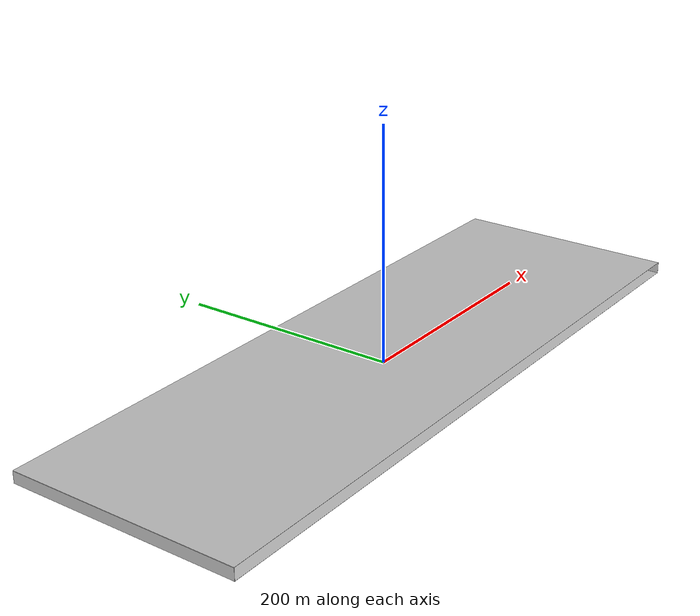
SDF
<?xml version='1.0'?>
<sdf version='1.6'>
  <model name='Building_600x200'>
    <link name='floor'>
      <inertial>
        <mass>20</mass>
        <inertia>
          <ixx>833333366666</ixx>
          <ixy>0</ixy>
          <ixz>0</ixz>
          <iyy>533333366666</iyy>
          <iyz>0</iyz>
          <izz>1366666666666</izz>
        </inertia>
        <pose frame=''>0 0 0 0 -0 0</pose>
      </inertial>
      <pose frame=''>0 0 -0.1 0 -0 0</pose>
      <gravity>1</gravity>
      <self_collide>0</self_collide>
      <kinematic>0</kinematic>
      <enable_wind>0</enable_wind>
      <visual name='visual'>
        <pose frame=''>0 0 0 0 -0 0</pose>
        <geometry>
          <box>
            <size>600 200 0.2</size>
          </box>
        </geometry>
        <material>
          <lighting>false</lighting>
          <script>
            <uri>model://Building_600x200/materials/scripts/</uri>
            <uri>model://Building_600x200/materials/textures/</uri>
            <name>stocked/concrete</name>
          </script>
        </material>
        <transparency>0</transparency>
        <cast_shadows>0</cast_shadows>
      </visual>
      <collision name='collision'>
        <laser_retro>0</laser_retro>
        <max_contacts>10</max_contacts>
        <pose frame=''>0 0 0 0 -0 0</pose>
        <geometry>
          <box>
            <size>600 200 0.2</size>
          </box>
        </geometry>
        <surface>
          <friction>
            <ode>
              <mu>1</mu>
              <mu2>1</mu2>
              <fdir1>0 0 0</fdir1>
              <slip1>0</slip1>
              <slip2>0</slip2>
            </ode>
            <torsional>
              <coefficient>1</coefficient>
              <patch_radius>0</patch_radius>
              <surface_radius>0</surface_radius>
              <use_patch_radius>1</use_patch_radius>
              <ode>
                <slip>0</slip>
              </ode>
            </torsional>
          </friction>
          <bounce>
            <restitution_coefficient>0</restitution_coefficient>
            <threshold>1e+06</threshold>
          </bounce>
          <contact>
            <collide_without_contact>0</collide_without_contact>
            <collide_without_contact_bitmask>1</collide_without_contact_bitmask>
            <collide_bitmask>1</collide_bitmask>
            <ode>
              <soft_cfm>0</soft_cfm>
              <soft_erp>0.2</soft_erp>
              <kp>1e+13</kp>
              <kd>1</kd>
              <max_vel>0.01</max_vel>
              <min_depth>0</min_depth>
            </ode>
            <bullet>
              <split_impulse>1</split_impulse>
              <split_impulse_penetration_threshold>-0.01</split_impulse_penetration_threshold>
              <soft_cfm>0</soft_cfm>
              <soft_erp>0.2</soft_erp>
              <kp>1e+13</kp>
              <kd>1</kd>
            </bullet>
          </contact>
        </surface>
      </collision>
    </link>

    <link name='ceiling'>
      <inertial>
        <mass>20</mass>
        <inertia>
          <ixx>833333366666</ixx>
          <ixy>0</ixy>
          <ixz>0</ixz>
          <iyy>533333366666</iyy>
          <iyz>0</iyz>
          <izz>1366666666666</izz>
        </inertia>
        <pose frame=''>0 0 0 0 -0 0</pose>
      </inertial>
      <pose frame=''>0 0 10.1 0 -0 0</pose>
      <gravity>1</gravity>
      <self_collide>0</self_collide>
      <kinematic>0</kinematic>
      <enable_wind>0</enable_wind>
      <visual name='visual'>
        <pose frame=''>0 0 0 0 -0 0</pose>
        <geometry>
          <box>
            <size>600 200 0.2</size>
          </box>
        </geometry>
        <material>
          <lighting>false</lighting>
          <script>
            <uri>model://Building_600x200/materials/scripts/</uri>
            <uri>model://Building_600x200/materials/textures/</uri>
            <name>stocked/aluminium_corrugated</name>
          </script>
        </material>
        <transparency>0</transparency>
        <cast_shadows>0</cast_shadows>
      </visual>
      <collision name='collision'>
        <laser_retro>0</laser_retro>
        <max_contacts>10</max_contacts>
        <pose frame=''>0 0 0 0 -0 0</pose>
        <geometry>
          <box>
            <size>600 200 0.2</size>
          </box>
        </geometry>
        <surface>
          <friction>
            <ode>
              <mu>1</mu>
              <mu2>1</mu2>
              <fdir1>0 0 0</fdir1>
              <slip1>0</slip1>
              <slip2>0</slip2>
            </ode>
            <torsional>
              <coefficient>1</coefficient>
              <patch_radius>0</patch_radius>
              <surface_radius>0</surface_radius>
              <use_patch_radius>1</use_patch_radius>
              <ode>
                <slip>0</slip>
              </ode>
            </torsional>
          </friction>
          <bounce>
            <restitution_coefficient>0</restitution_coefficient>
            <threshold>1e+06</threshold>
          </bounce>
          <contact>
            <collide_without_contact>0</collide_without_contact>
            <collide_without_contact_bitmask>1</collide_without_contact_bitmask>
            <collide_bitmask>1</collide_bitmask>
            <ode>
              <soft_cfm>0</soft_cfm>
              <soft_erp>0.2</soft_erp>
              <kp>1e+13</kp>
              <kd>1</kd>
              <max_vel>0.01</max_vel>
              <min_depth>0</min_depth>
            </ode>
            <bullet>
              <split_impulse>1</split_impulse>
              <split_impulse_penetration_threshold>-0.01</split_impulse_penetration_threshold>
              <soft_cfm>0</soft_cfm>
              <soft_erp>0.2</soft_erp>
              <kp>1e+13</kp>
              <kd>1</kd>
            </bullet>
          </contact>
        </surface>
      </collision>
    </link>

    <link name='wall_1'>
      <inertial>
        <mass>20</mass>
        <inertia>
          <ixx>833333366666</ixx>
          <ixy>0</ixy>
          <ixz>0</ixz>
          <iyy>533333366666</iyy>
          <iyz>0</iyz>
          <izz>1366666666666</izz>
        </inertia>
        <pose frame=''>0 0 0 0 -0 0</pose>
      </inertial>
      <pose frame=''>300.1 0 5 0 -0 0</pose>
      <gravity>1</gravity>
      <self_collide>0</self_collide>
      <kinematic>0</kinematic>
      <enable_wind>0</enable_wind>
      <visual name='visual'>
        <pose frame=''>0 0 0 0 -0 0</pose>
        <geometry>
          <box>
            <size>0.2 200 10</size>
          </box>
        </geometry>
        <material>
          <lighting>true</lighting>
          <script>
            <uri>model://Building_600x200/materials/scripts/</uri>
            <uri>model://Building_600x200/materials/textures/</uri>
            <name>stocked/concrete</name>
          </script>
        </material>
        <transparency>0</transparency>
        <cast_shadows>0</cast_shadows>
      </visual>
      <collision name='collision'>
        <laser_retro>0</laser_retro>
        <max_contacts>10</max_contacts>
        <pose frame=''>0 0 0 0 -0 0</pose>
        <geometry>
          <box>
            <size>0.2 200 10</size>
          </box>
        </geometry>
        <surface>
          <friction>
            <ode>
              <mu>1</mu>
              <mu2>1</mu2>
              <fdir1>0 0 0</fdir1>
              <slip1>0</slip1>
              <slip2>0</slip2>
            </ode>
            <torsional>
              <coefficient>1</coefficient>
              <patch_radius>0</patch_radius>
              <surface_radius>0</surface_radius>
              <use_patch_radius>1</use_patch_radius>
              <ode>
                <slip>0</slip>
              </ode>
            </torsional>
          </friction>
          <bounce>
            <restitution_coefficient>0</restitution_coefficient>
            <threshold>1e+06</threshold>
          </bounce>
          <contact>
            <collide_without_contact>0</collide_without_contact>
            <collide_without_contact_bitmask>1</collide_without_contact_bitmask>
            <collide_bitmask>1</collide_bitmask>
            <ode>
              <soft_cfm>0</soft_cfm>
              <soft_erp>0.2</soft_erp>
              <kp>1e+13</kp>
              <kd>1</kd>
              <max_vel>0.01</max_vel>
              <min_depth>0</min_depth>
            </ode>
            <bullet>
              <split_impulse>1</split_impulse>
              <split_impulse_penetration_threshold>-0.01</split_impulse_penetration_threshold>
              <soft_cfm>0</soft_cfm>
              <soft_erp>0.2</soft_erp>
              <kp>1e+13</kp>
              <kd>1</kd>
            </bullet>
          </contact>
        </surface>
      </collision>
    </link>

    <link name='wall_2'>
      <inertial>
        <mass>20</mass>
        <inertia>
          <ixx>833333366666</ixx>
          <ixy>0</ixy>
          <ixz>0</ixz>
          <iyy>533333366666</iyy>
          <iyz>0</iyz>
          <izz>1366666666666</izz>
        </inertia>
        <pose frame=''>0 0 0 0 -0 0</pose>
      </inertial>
      <pose frame=''>-300.1 0 5 0 -0 0</pose>
      <gravity>1</gravity>
      <self_collide>0</self_collide>
      <kinematic>0</kinematic>
      <enable_wind>0</enable_wind>
      <visual name='visual'>
        <pose frame=''>0 0 0 0 -0 0</pose>
        <geometry>
          <box>
            <size>0.2 200 10</size>
          </box>
        </geometry>
        <material>
          <lighting>true</lighting>
          <script>
            <uri>model://Building_600x200/materials/scripts/</uri>
            <uri>model://Building_600x200/materials/textures/</uri>
            <name>stocked/concrete</name>
          </script>
        </material>
        <transparency>0</transparency>
        <cast_shadows>0</cast_shadows>
      </visual>
      <collision name='collision'>
        <laser_retro>0</laser_retro>
        <max_contacts>10</max_contacts>
        <pose frame=''>0 0 0 0 -0 0</pose>
        <geometry>
          <box>
            <size>0.2 200 10</size>
          </box>
        </geometry>
        <surface>
          <friction>
            <ode>
              <mu>1</mu>
              <mu2>1</mu2>
              <fdir1>0 0 0</fdir1>
              <slip1>0</slip1>
              <slip2>0</slip2>
            </ode>
            <torsional>
              <coefficient>1</coefficient>
              <patch_radius>0</patch_radius>
              <surface_radius>0</surface_radius>
              <use_patch_radius>1</use_patch_radius>
              <ode>
                <slip>0</slip>
              </ode>
            </torsional>
          </friction>
          <bounce>
            <restitution_coefficient>0</restitution_coefficient>
            <threshold>1e+06</threshold>
          </bounce>
          <contact>
            <collide_without_contact>0</collide_without_contact>
            <collide_without_contact_bitmask>1</collide_without_contact_bitmask>
            <collide_bitmask>1</collide_bitmask>
            <ode>
              <soft_cfm>0</soft_cfm>
              <soft_erp>0.2</soft_erp>
              <kp>1e+13</kp>
              <kd>1</kd>
              <max_vel>0.01</max_vel>
              <min_depth>0</min_depth>
            </ode>
            <bullet>
              <split_impulse>1</split_impulse>
              <split_impulse_penetration_threshold>-0.01</split_impulse_penetration_threshold>
              <soft_cfm>0</soft_cfm>
              <soft_erp>0.2</soft_erp>
              <kp>1e+13</kp>
              <kd>1</kd>
            </bullet>
          </contact>
        </surface>
      </collision>
    </link>

    <link name='wall_3'>
      <inertial>
        <mass>20</mass>
        <inertia>
          <ixx>833333366666</ixx>
          <ixy>0</ixy>
          <ixz>0</ixz>
          <iyy>533333366666</iyy>
          <iyz>0</iyz>
          <izz>1366666666666</izz>
        </inertia>
        <pose frame=''>0 0 0 0 -0 0</pose>
      </inertial>
      <pose frame=''>0 100.1 5 0 -0 0</pose>
      <gravity>1</gravity>
      <self_collide>0</self_collide>
      <kinematic>0</kinematic>
      <enable_wind>0</enable_wind>
      <visual name='visual'>
        <pose frame=''>0 0 0 0 -0 0</pose>
        <geometry>
          <box>
            <size>600 0.2 10</size>
          </box>
        </geometry>
        <material>
          <lighting>true</lighting>
          <script>
            <uri>model://Building_600x200/materials/scripts/</uri>
            <uri>model://Building_600x200/materials/textures/</uri>
            <name>stocked/concrete</name>
          </script>
        </material>
        <transparency>0</transparency>
        <cast_shadows>0</cast_shadows>
      </visual>
      <collision name='collision'>
        <laser_retro>0</laser_retro>
        <max_contacts>10</max_contacts>
        <pose frame=''>0 0 0 0 -0 0</pose>
        <geometry>
          <box>
            <size>600 0.2 10</size>
          </box>
        </geometry>
        <surface>
          <friction>
            <ode>
              <mu>1</mu>
              <mu2>1</mu2>
              <fdir1>0 0 0</fdir1>
              <slip1>0</slip1>
              <slip2>0</slip2>
            </ode>
            <torsional>
              <coefficient>1</coefficient>
              <patch_radius>0</patch_radius>
              <surface_radius>0</surface_radius>
              <use_patch_radius>1</use_patch_radius>
              <ode>
                <slip>0</slip>
              </ode>
            </torsional>
          </friction>
          <bounce>
            <restitution_coefficient>0</restitution_coefficient>
            <threshold>1e+06</threshold>
          </bounce>
          <contact>
            <collide_without_contact>0</collide_without_contact>
            <collide_without_contact_bitmask>1</collide_without_contact_bitmask>
            <collide_bitmask>1</collide_bitmask>
            <ode>
              <soft_cfm>0</soft_cfm>
              <soft_erp>0.2</soft_erp>
              <kp>1e+13</kp>
              <kd>1</kd>
              <max_vel>0.01</max_vel>
              <min_depth>0</min_depth>
            </ode>
            <bullet>
              <split_impulse>1</split_impulse>
              <split_impulse_penetration_threshold>-0.01</split_impulse_penetration_threshold>
              <soft_cfm>0</soft_cfm>
              <soft_erp>0.2</soft_erp>
              <kp>1e+13</kp>
              <kd>1</kd>
            </bullet>
          </contact>
        </surface>
      </collision>
    </link>

    <static>1</static>
  </model>
</sdf>
